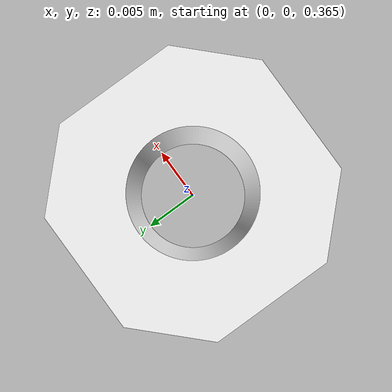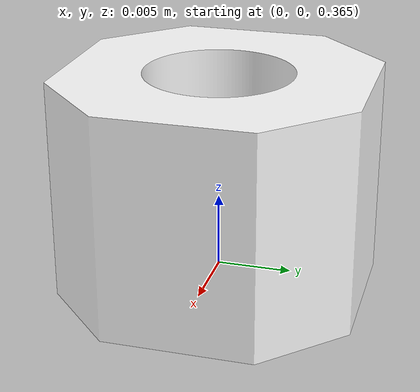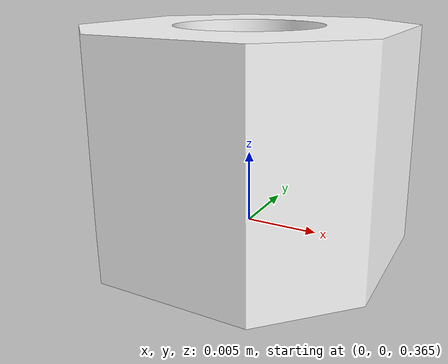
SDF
<?xml version="1.0" ?>
<sdf version="1.5">
  <model name="nut">

    <!-- Model Link  -->
    <link name="base">
      <pose>0 0 0.363725 0 0 3.14159</pose>
      <inertial>
        <mass>0.002</mass>
        <inertia>
          <ixx>0.119</ixx>
          <ixy>0.0</ixy>
          <ixz>0.0</ixz>
          <iyy>0.119</iyy>
          <iyz>0.0</iyz>
          <izz>0.153</izz>
        </inertia>
      </inertial>

      <collision name="collision">
        <geometry>
          <mesh>
            <uri>model://nut/meshes/nut.dae</uri>
          </mesh>
        </geometry>
      </collision>

      <visual name="visual">
        <geometry>
          <mesh>
            <uri>model://nut/meshes/nut.dae</uri>
          </mesh>
        </geometry>

        <material>
          <script>
            <uri>model://nut/materials/textures</uri>
            <uri>model://nut/materials/scripts</uri>
            <name>nut/texture</name>
          </script>

          <shader type = 'vertex'>
            <normal_map>__default__</normal_map>
          </shader>
          <ambient>1 1 1 1</ambient>
          <diffuse>1 1 1 1</diffuse>
          <specular>1 1 1 1</specular>
          <emissive>0 0 0 1</emissive>
        </material>

      </visual>

    </link>
  </model>
</sdf>
